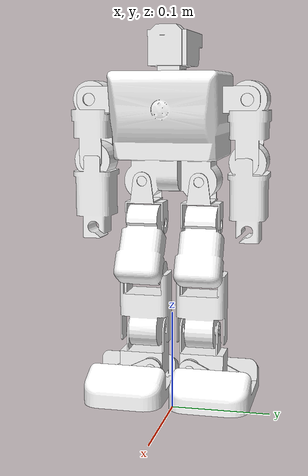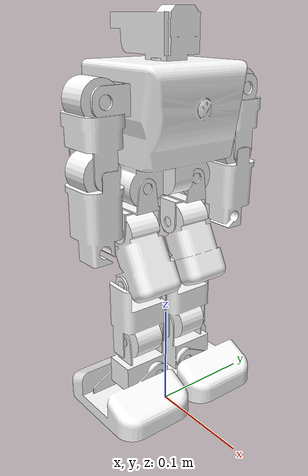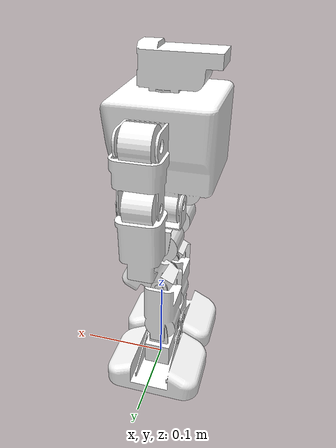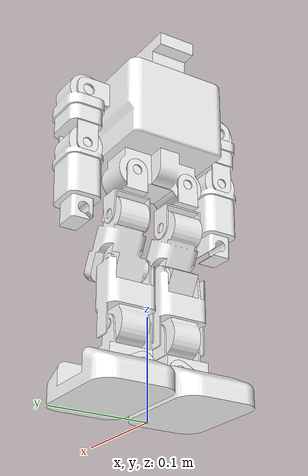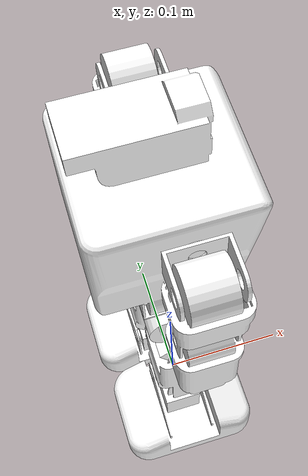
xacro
<robot name="yanshee_gazebo" xmlns:xacro="http://wiki.ros.org/xacro">
    <xacro:include filename="yanshee_base.urdf.xacro" />
    <xacro:include filename="yanshee_head.urdf.xacro" />
    <xacro:include filename="yanshee_left_arm1.urdf.xacro" />
    <xacro:include filename="yanshee_left_arm2.urdf.xacro" />
    <xacro:include filename="yanshee_left_arm3.urdf.xacro" />
    <xacro:include filename="yanshee_right_arm1.urdf.xacro" />
    <xacro:include filename="yanshee_right_arm2.urdf.xacro" />
    <xacro:include filename="yanshee_right_arm3.urdf.xacro" />
    <xacro:include filename="yanshee_left_leg1.urdf.xacro" />
    <xacro:include filename="yanshee_left_leg2.urdf.xacro" />
    <xacro:include filename="yanshee_left_leg3.urdf.xacro" />
    <xacro:include filename="yanshee_left_leg4.urdf.xacro" />
    <xacro:include filename="yanshee_left_leg5.urdf.xacro" />
    <xacro:include filename="yanshee_right_leg1.urdf.xacro" />
    <xacro:include filename="yanshee_right_leg2.urdf.xacro" />
    <xacro:include filename="yanshee_right_leg3.urdf.xacro" />
    <xacro:include filename="yanshee_right_leg4.urdf.xacro" />
    <xacro:include filename="yanshee_right_leg5.urdf.xacro" />
    <xacro:include filename="yanshee_controller.urdf.xacro" />
</robot>

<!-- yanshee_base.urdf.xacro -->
<robot name="base" xmlns:xacro="http://wiki.ros.org/xacro">

  <xacro:property name="part_name" value="base" />
  <xacro:property name="interial_x" value="-0.00671487104263047" />
  <xacro:property name="interial_y" value="-0.000225582019654342" />
  <xacro:property name="interial_z" value="-0.0079919194119481" />

  <xacro:property name="interial_mass" value="1.0296612030539" />

  <xacro:property name="interial_ixx" value="0.00180022359518362" />
  <xacro:property name="interial_ixy" value="1.1918387954471E-07" />
  <xacro:property name="interial_ixz" value="-5.28660375448492E-05" />
  <xacro:property name="interial_iyy" value="0.00176811056794777" />
  <xacro:property name="interial_iyz" value="1.82106435044606E-06" />
  <xacro:property name="interial_izz" value="0.00168298836267856" />
  <xacro:property name="mesh_file" value="package://yanshee/meshes/base_link.STL" />
  <xacro:property name="joint_offset_z" value="0.3" />

  <link name='world'>
    <visual>
      <geometry>
        <sphere radius="0.001" />
      </geometry>
    </visual>
  </link>

  <link name="${part_name}_link">
    <inertial>
      <origin xyz="${interial_x} ${interial_y} ${interial_z}" rpy="0 0 0" />
      <mass value="${interial_mass}" />
      <inertia
        ixx="${interial_ixx}"
        ixy="${interial_ixy}"
        ixz="${interial_ixz}"
        iyy="${interial_iyy}"
        iyz="${interial_iyz}"
        izz="${interial_izz}" />
    </inertial>

    <visual>
      <origin xyz="0 0 0" rpy="0 0 0" />
      <geometry>
        <mesh filename="${mesh_file}" />
      </geometry>
      <material name="">
        <color rgba="1 1 1 1" />
      </material>
    </visual>

    <collision>
      <origin xyz="0 0 0" rpy="0 0 0" />
      <geometry>
        <mesh filename="${mesh_file}" />
      </geometry>
    </collision>
  </link>

  <gazebo reference="${part_name}_link">
  </gazebo>

  <joint name="${part_name}_joint" type="fixed">
    <parent link="world"/>
    <child link="base_link"/>
    <origin rpy="0.0 0.0 0.0" xyz="0.0 0.0 ${joint_offset_z}"/>
  </joint>

</robot>

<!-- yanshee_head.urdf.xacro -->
<robot name="head" xmlns:xacro="http://wiki.ros.org/xacro">
  <xacro:property name="part_name" value="head" />
  <xacro:property name="origin_x" value="-0.0107920940962409" />
  <xacro:property name="origin_y" value="7.80887188769389E-05" />
  <xacro:property name="origin_z" value="0.00228460765430599" />
  <xacro:property name="mass_value" value="0.0931744907520849" />

  <xacro:property name="inertia_ixx" value="2.05515448473376E-05" />
  <xacro:property name="inertia_ixy" value="2.15071905057931E-08" />
  <xacro:property name="inertia_ixz" value="2.68261333173558E-06" />
  <xacro:property name="inertia_iyy" value="4.973230871684E-05" />
  <xacro:property name="inertia_iyz" value="1.39655887082477E-09" />
  <xacro:property name="inertia_izz" value="5.02600433533246E-05" />

  <xacro:property name="mesh_file" value="package://yanshee/meshes/head_Link.STL" />

  <xacro:property name="joint_offset_x" value="0" />
  <xacro:property name="joint_offset_y" value="-0.00014945" />
  <xacro:property name="joint_offset_z" value="0.06" />

  <xacro:property name="joint_axis_x" value="-0.00044678" />
  <xacro:property name="joint_axis_y" value="-0.0035302" />
  <xacro:property name="joint_axis_z" value="0.99999" />

  <xacro:property name="joint_limit_lower" value="-0.78" />
  <xacro:property name="joint_limit_upper" value="0.78" />
  <xacro:property name="joint_limit_effort" value="1.0" />
  <xacro:property name="joint_limit_velocity" value="10" />

  <xacro:property name="joint_dynamics_damping" value="5.0" />
  <xacro:property name="joint_dynamics_friction" value="0.0" />

  <link name="${part_name}_Link">
    <inertial>
      <origin xyz="${origin_x} ${origin_y} ${origin_z}" rpy="0 0 0" />
      <mass value="${mass_value}" />
      <inertia
        ixx="${inertia_ixx}"
        ixy="${inertia_ixy}"
        ixz="${inertia_ixz}"
        iyy="${inertia_iyy}"
        iyz="${inertia_iyz}"
        izz="${inertia_izz}" />
    </inertial>

    <visual>
      <origin xyz="0 0 0" rpy="0 0 0" />
      <geometry>
        <mesh filename="${mesh_file}" />
      </geometry>
      <material name="">
        <color rgba="1 1 1 1" />
      </material>
    </visual>

    <collision>
      <origin xyz="0 0 0" rpy="0 0 0" />
      <geometry>
        <mesh filename="${mesh_file}" />
      </geometry>
    </collision>
  </link>

  <gazebo reference="${part_name}_Link">
  </gazebo>

  <joint name="${part_name}_joint" type="revolute">
    <origin xyz="${joint_offset_x} ${joint_offset_y} ${joint_offset_z}" rpy="0 0 0" />
    <parent link="base_link" />
    <child link="head_Link" />
    <axis xyz="${joint_axis_x} ${joint_axis_y} ${joint_axis_z}" />
    <limit lower="${joint_limit_lower}" upper="${joint_limit_upper}" effort="${joint_limit_effort}" velocity="${joint_limit_velocity}" />
    <dynamics damping="${joint_dynamics_damping}" friction="${joint_dynamics_friction}"/>
  </joint>

  <gazebo reference="${part_name}_joint">
    <implicitSpringDamper>true</implicitSpringDamper>
  </gazebo>

</robot>

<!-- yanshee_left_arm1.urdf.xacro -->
<robot name="left_arm1" xmlns:xacro="http://wiki.ros.org/xacro">
  <xacro:property name="part_name" value="left_arm1" />
  <xacro:property name="origin_x" value="5.14775840678994E-05" />
  <xacro:property name="origin_y" value="-9.5842284426495E-05" />
  <xacro:property name="origin_z" value="-0.0118303086559914" />
  <xacro:property name="mass_value" value="0.0136649272424537" />

  <xacro:property name="inertia_ixx" value="2.3634868988607E-06" />
  <xacro:property name="inertia_ixy" value="-2.43828126653101E-12" />
  <xacro:property name="inertia_ixz" value="2.57000691024144E-10" />
  <xacro:property name="inertia_iyy" value="5.47215996034315E-06" />
  <xacro:property name="inertia_iyz" value="1.05376000100878E-09" />
  <xacro:property name="inertia_izz" value="4.66119879830543E-06" />

  <xacro:property name="mesh_file" value="package://yanshee/meshes/left_arm1_Link.STL" />

  <xacro:property name="joint_offset_x" value="0.0030003" />
  <xacro:property name="joint_offset_y" value="0.076597" />
  <xacro:property name="joint_offset_z" value="0.013315" />
  <xacro:property name="joint_offset_rr" value="-1.5708" />
  <xacro:property name="joint_offset_rp" value="0" />
  <xacro:property name="joint_offset_ry" value="0" />

  <xacro:property name="parent_link" value="base_link" />
  <xacro:property name="child_link" value="left_arm1_Link" />

  <xacro:property name="joint_axis_x" value="-5.8802E-05" />
  <xacro:property name="joint_axis_y" value="0" />
  <xacro:property name="joint_axis_z" value="-1" />

  <xacro:property name="joint_limit_lower" value="-1.58" />
  <xacro:property name="joint_limit_upper" value="1.58" />
  <xacro:property name="joint_limit_effort" value="1" />
  <xacro:property name="joint_limit_velocity" value="10" />

  <xacro:property name="joint_dynamics_damping" value="5.0" />
  <xacro:property name="joint_dynamics_friction" value="0.0" />

  <link name="${part_name}_Link">
    <inertial>
      <origin xyz="${origin_x} ${origin_y} ${origin_z}" rpy="0 0 0" />
      <mass value="${mass_value}" />
      <inertia
        ixx="${inertia_ixx}"
        ixy="${inertia_ixy}"
        ixz="${inertia_ixz}"
        iyy="${inertia_iyy}"
        iyz="${inertia_iyz}"
        izz="${inertia_izz}" />
    </inertial>

    <visual>
      <origin xyz="0 0 0" rpy="0 0 0" />
      <geometry>
        <mesh filename="${mesh_file}" />
      </geometry>
      <material name="">
        <color rgba="1 1 1 1" />
      </material>
    </visual>

    <collision>
      <origin xyz="0 0 0" rpy="0 0 0" />
      <geometry>
        <mesh filename="${mesh_file}" />
      </geometry>
    </collision>
  </link>

  <gazebo reference="${part_name}_Link">
  </gazebo>

  <joint name="${part_name}_joint" type="revolute">
    <origin xyz="${joint_offset_x} ${joint_offset_y} ${joint_offset_z}" rpy="${joint_offset_rr} ${joint_offset_rp} ${joint_offset_ry}" />
    <parent link="${parent_link}" />
    <child link="${child_link}" />
    <axis xyz="${joint_axis_x} ${joint_axis_y} ${joint_axis_z}" />
    <limit lower="${joint_limit_lower}" upper="${joint_limit_upper}" effort="${joint_limit_effort}" velocity="${joint_limit_velocity}" />
    <dynamics damping="${joint_dynamics_damping}" friction="${joint_dynamics_friction}"/>
  </joint>

  <gazebo reference="${part_name}_joint">
    <implicitSpringDamper>true</implicitSpringDamper>
  </gazebo>

</robot>

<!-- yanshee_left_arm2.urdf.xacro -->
<robot name="left_arm2" xmlns:xacro="http://wiki.ros.org/xacro">
  <xacro:property name="part_name" value="left_arm2" />
  <xacro:property name="origin_x" value="0.0186297064589019" />
  <xacro:property name="origin_y" value="0.000401816051501303" />
  <xacro:property name="origin_z" value="-0.00042578700677829" />
  <xacro:property name="mass_value" value="0.0156927248264831" />

  <xacro:property name="inertia_ixx" value="5.6753981697414E-06" />
  <xacro:property name="inertia_ixy" value="4.73427409516267E-08" />
  <xacro:property name="inertia_ixz" value="4.73427409516267E-08" />
  <xacro:property name="inertia_iyy" value="1.01425535666065E-05" />
  <xacro:property name="inertia_iyz" value="-5.19641927957789E-09" />
  <xacro:property name="inertia_izz" value="8.82186853628373E-06" />

  <xacro:property name="mesh_file" value="package://yanshee/meshes/left_arm2_Link.STL" />

  <xacro:property name="joint_offset_x" value="0" />
  <xacro:property name="joint_offset_y" value="0" />
  <xacro:property name="joint_offset_z" value="0" />
  <xacro:property name="joint_offset_rr" value="1.5708" />
  <xacro:property name="joint_offset_rp" value="0" />
  <xacro:property name="joint_offset_ry" value="1.5708" />

  <xacro:property name="parent_link" value="left_arm1_Link" />
  <xacro:property name="child_link" value="left_arm2_Link" />

  <xacro:property name="joint_axis_x" value="0" />
  <xacro:property name="joint_axis_y" value="0" />
  <xacro:property name="joint_axis_z" value="1" />

  <xacro:property name="joint_limit_lower" value="-1.58" />
  <xacro:property name="joint_limit_upper" value="1.58" />
  <xacro:property name="joint_limit_effort" value="1" />
  <xacro:property name="joint_limit_velocity" value="10" />

  <xacro:property name="joint_dynamics_damping" value="5.0" />
  <xacro:property name="joint_dynamics_friction" value="0.0" />

  <link name="${part_name}_Link">
    <inertial>
      <origin xyz="${origin_x} ${origin_y} ${origin_z}" rpy="0 0 0" />
      <mass value="${mass_value}" />
      <inertia
        ixx="${inertia_ixx}"
        ixy="${inertia_ixy}"
        ixz="${inertia_ixz}"
        iyy="${inertia_iyy}"
        iyz="${inertia_iyz}"
        izz="${inertia_izz}" />
    </inertial>

    <visual>
      <origin xyz="0 0 0" rpy="0 0 0" />
      <geometry>
        <mesh filename="${mesh_file}" />
      </geometry>
      <material name="">
        <color rgba="1 1 1 1" />
      </material>
    </visual>

    <collision>
      <origin xyz="0 0 0" rpy="0 0 0" />
      <geometry>
        <mesh filename="${mesh_file}" />
      </geometry>
    </collision>
  </link>

  <gazebo reference="${part_name}_Link">
  </gazebo>

  <joint name="${part_name}_joint" type="revolute">
    <origin xyz="${joint_offset_x} ${joint_offset_y} ${joint_offset_z}" rpy="${joint_offset_rr} ${joint_offset_rp} ${joint_offset_ry}" />
    <parent link="${parent_link}" />
    <child link="${child_link}" />
    <axis xyz="${joint_axis_x} ${joint_axis_y} ${joint_axis_z}" />
    <limit lower="${joint_limit_lower}" upper="${joint_limit_upper}" effort="${joint_limit_effort}" velocity="${joint_limit_velocity}" />
    <dynamics damping="${joint_dynamics_damping}" friction="${joint_dynamics_friction}"/>
  </joint>

  <gazebo reference="${part_name}_joint">
    <implicitSpringDamper>true</implicitSpringDamper>
  </gazebo>

</robot>

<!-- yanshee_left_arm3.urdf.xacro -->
<robot name="left_arm3" xmlns:xacro="http://wiki.ros.org/xacro">
  <xacro:property name="part_name" value="left_arm3" />
  <xacro:property name="origin_x" value="0.026570274501621" />
  <xacro:property name="origin_y" value="9.51803753585501E-05" />
  <xacro:property name="origin_z" value="-0.00376690909324129" />
  <xacro:property name="mass_value" value="0.0983861935013279" />

  <xacro:property name="inertia_ixx" value="1.95628201387486E-05" />
  <xacro:property name="inertia_ixy" value="-4.69255772866858E-07" />
  <xacro:property name="inertia_ixz" value="4.3937955466687E-07" />
  <xacro:property name="inertia_iyy" value="6.21429342121587E-05" />
  <xacro:property name="inertia_iyz" value="1.77682159194068E-08" />
  <xacro:property name="inertia_izz" value="6.01446819208126E-05" />

  <xacro:property name="mesh_file" value="package://yanshee/meshes/left_arm3_Link.STL" />

  <xacro:property name="joint_offset_x" value="0.059245" />
  <xacro:property name="joint_offset_y" value="0" />
  <xacro:property name="joint_offset_z" value="0.00152" />
  <xacro:property name="joint_offset_rr" value="0" />
  <xacro:property name="joint_offset_rp" value="0" />
  <xacro:property name="joint_offset_ry" value="0" />

  <xacro:property name="parent_link" value="left_arm2_Link" />
  <xacro:property name="child_link" value="left_arm3_Link" />

  <xacro:property name="joint_axis_x" value="0.026177" />
  <xacro:property name="joint_axis_y" value="0" />
  <xacro:property name="joint_axis_z" value="0.99966" />

  <xacro:property name="joint_limit_lower" value="-1.58" />
  <xacro:property name="joint_limit_upper" value="1.58" />
  <xacro:property name="joint_limit_effort" value="1" />
  <xacro:property name="joint_limit_velocity" value="10" />

  <xacro:property name="joint_dynamics_damping" value="5.0" />
  <xacro:property name="joint_dynamics_friction" value="0.0" />

  <link name="${part_name}_Link">
    <inertial>
      <origin xyz="${origin_x} ${origin_y} ${origin_z}" rpy="0 0 0" />
      <mass value="${mass_value}" />
      <inertia
        ixx="${inertia_ixx}"
        ixy="${inertia_ixy}"
        ixz="${inertia_ixz}"
        iyy="${inertia_iyy}"
        iyz="${inertia_iyz}"
        izz="${inertia_izz}" />
    </inertial>

    <visual>
      <origin xyz="0 0 0" rpy="0 0 0" />
      <geometry>
        <mesh filename="${mesh_file}" />
      </geometry>
      <material name="">
        <color rgba="1 1 1 1" />
      </material>
    </visual>

    <collision>
      <origin xyz="0 0 0" rpy="0 0 0" />
      <geometry>
        <mesh filename="${mesh_file}" />
      </geometry>
    </collision>
  </link>

  <gazebo reference="${part_name}_Link">
  </gazebo>

  <joint name="${part_name}_joint" type="revolute">
    <origin xyz="${joint_offset_x} ${joint_offset_y} ${joint_offset_z}" rpy="${joint_offset_rr} ${joint_offset_rp} ${joint_offset_ry}" />
    <parent link="${parent_link}" />
    <child link="${child_link}" />
    <axis xyz="${joint_axis_x} ${joint_axis_y} ${joint_axis_z}" />
    <limit lower="${joint_limit_lower}" upper="${joint_limit_upper}" effort="${joint_limit_effort}" velocity="${joint_limit_velocity}" />
    <dynamics damping="${joint_dynamics_damping}" friction="${joint_dynamics_friction}"/>
  </joint>

  <gazebo reference="${part_name}_joint">
    <implicitSpringDamper>true</implicitSpringDamper>
  </gazebo>

</robot>

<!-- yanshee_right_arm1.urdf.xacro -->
<robot name="right_arm1" xmlns:xacro="http://wiki.ros.org/xacro">
  <xacro:property name="part_name" value="right_arm1" />
  <xacro:property name="origin_x" value="-5.1477587142388E-05" />
  <xacro:property name="origin_y" value="-9.58421639294105E-05" />
  <xacro:property name="origin_z" value="-0.0118303086560013" />
  <xacro:property name="mass_value" value="0.0136649272424444" />

  <xacro:property name="inertia_ixx" value="2.36348689889869E-06" />
  <xacro:property name="inertia_ixy" value="2.43827204007905E-12" />
  <xacro:property name="inertia_ixz" value="-2.57000159418442E-10" />
  <xacro:property name="inertia_iyy" value="5.4721599603395E-06" />
  <xacro:property name="inertia_iyz" value="1.05373950042753E-09" />
  <xacro:property name="inertia_izz" value="4.66119879834388E-06" />

  <xacro:property name="mesh_file" value="package://yanshee/meshes/right_arm1_Link.STL" />

  <xacro:property name="joint_offset_x" value="0.0030003" />
  <xacro:property name="joint_offset_y" value="-0.077273" />
  <xacro:property name="joint_offset_z" value="0.013316" />
  <xacro:property name="joint_offset_rr" value="1.5708" />
  <xacro:property name="joint_offset_rp" value="0" />
  <xacro:property name="joint_offset_ry" value="0" />

  <xacro:property name="parent_link" value="base_link" />
  <xacro:property name="child_link" value="right_arm1_Link" />

  <xacro:property name="joint_axis_x" value="0" />
  <xacro:property name="joint_axis_y" value="0" />
  <xacro:property name="joint_axis_z" value="1" />

  <xacro:property name="joint_limit_lower" value="-1.58" />
  <xacro:property name="joint_limit_upper" value="1.58" />
  <xacro:property name="joint_limit_effort" value="1" />
  <xacro:property name="joint_limit_velocity" value="10" />

  <xacro:property name="joint_dynamics_damping" value="5.0" />
  <xacro:property name="joint_dynamics_friction" value="0.0" />

  <link name="${part_name}_Link">
    <inertial>
      <origin xyz="${origin_x} ${origin_y} ${origin_z}" rpy="0 0 0" />
      <mass value="${mass_value}" />
      <inertia
        ixx="${inertia_ixx}"
        ixy="${inertia_ixy}"
        ixz="${inertia_ixz}"
        iyy="${inertia_iyy}"
        iyz="${inertia_iyz}"
        izz="${inertia_izz}" />
    </inertial>

    <visual>
      <origin xyz="0 0 0" rpy="0 0 0" />
      <geometry>
        <mesh filename="${mesh_file}" />
      </geometry>
      <material name="">
        <color rgba="1 1 1 1" />
      </material>
    </visual>

    <collision>
      <origin xyz="0 0 0" rpy="0 0 0" />
      <geometry>
        <mesh filename="${mesh_file}" />
      </geometry>
    </collision>
  </link>

  <joint name="${part_name}_joint" type="revolute">
    <origin xyz="${joint_offset_x} ${joint_offset_y} ${joint_offset_z}" rpy="${joint_offset_rr} ${joint_offset_rp} ${joint_offset_ry}" />
    <parent link="${parent_link}" />
    <child link="${child_link}" />
    <axis xyz="${joint_axis_x} ${joint_axis_y} ${joint_axis_z}" />
    <limit lower="${joint_limit_lower}" upper="${joint_limit_upper}" effort="${joint_limit_effort}" velocity="${joint_limit_velocity}" />
    <dynamics damping="${joint_dynamics_damping}" friction="${joint_dynamics_friction}"/>
  </joint>

  <gazebo reference="${part_name}_joint">
    <implicitSpringDamper>true</implicitSpringDamper>
  </gazebo>

</robot>

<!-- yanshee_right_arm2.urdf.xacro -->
<robot name="right_arm2" xmlns:xacro="http://wiki.ros.org/xacro">
  <xacro:property name="part_name" value="right_arm2" />
  <xacro:property name="origin_x" value="0.0186297095059434" />
  <xacro:property name="origin_y" value="0.000401688645375403" />
  <xacro:property name="origin_z" value="0.000425917718280107" />
  <xacro:property name="mass_value" value="0.0156926956999585" />

  <xacro:property name="inertia_ixx" value="5.67540894238038E-06" />
  <xacro:property name="inertia_ixy" value="4.73622619858288E-08" />
  <xacro:property name="inertia_ixz" value="1.27913953578669E-07" />
  <xacro:property name="inertia_iyy" value="1.01425587967183E-05" />
  <xacro:property name="inertia_iyz" value="5.14556186469705E-09" />
  <xacro:property name="inertia_izz" value="8.82187996580289E-06" />

  <xacro:property name="mesh_file" value="package://yanshee/meshes/right_arm2_Link.STL" />

  <xacro:property name="joint_offset_x" value="-9.961E-05" />
  <xacro:property name="joint_offset_y" value="0" />
  <xacro:property name="joint_offset_z" value="0" />
  <xacro:property name="joint_offset_rr" value="1.5708" />
  <xacro:property name="joint_offset_rp" value="0" />
  <xacro:property name="joint_offset_ry" value="-1.5708" />

  <xacro:property name="parent_link" value="right_arm1_Link" />
  <xacro:property name="child_link" value="right_arm2_Link" />

  <xacro:property name="joint_axis_x" value="0" />
  <xacro:property name="joint_axis_y" value="0" />
  <xacro:property name="joint_axis_z" value="1" />

  <xacro:property name="joint_limit_lower" value="-1.58" />
  <xacro:property name="joint_limit_upper" value="1.58" />
  <xacro:property name="joint_limit_effort" value="1" />
  <xacro:property name="joint_limit_velocity" value="10" />

  <xacro:property name="joint_dynamics_damping" value="5.0" />
  <xacro:property name="joint_dynamics_friction" value="0.0" />

  <link name="${part_name}_Link">
    <inertial>
      <origin xyz="${origin_x} ${origin_y} ${origin_z}" rpy="0 0 0" />
      <mass value="${mass_value}" />
      <inertia
        ixx="${inertia_ixx}"
        ixy="${inertia_ixy}"
        ixz="${inertia_ixz}"
        iyy="${inertia_iyy}"
        iyz="${inertia_iyz}"
        izz="${inertia_izz}" />
    </inertial>

    <visual>
      <origin xyz="0 0 0" rpy="0 0 0" />
      <geometry>
        <mesh filename="${mesh_file}" />
      </geometry>
      <material name="">
        <color rgba="1 1 1 1" />
      </material>
    </visual>

    <collision>
      <origin xyz="0 0 0" rpy="0 0 0" />
      <geometry>
        <mesh filename="${mesh_file}" />
      </geometry>
    </collision>
  </link>

  <gazebo reference="${part_name}">
  </gazebo>

  <joint name="${part_name}_joint" type="revolute">
    <origin xyz="${joint_offset_x} ${joint_offset_y} ${joint_offset_z}" rpy="${joint_offset_rr} ${joint_offset_rp} ${joint_offset_ry}" />
    <parent link="${parent_link}" />
    <child link="${child_link}" />
    <axis xyz="${joint_axis_x} ${joint_axis_y} ${joint_axis_z}" />
    <limit lower="${joint_limit_lower}" upper="${joint_limit_upper}" effort="${joint_limit_effort}" velocity="${joint_limit_velocity}" />
    <dynamics damping="${joint_dynamics_damping}" friction="${joint_dynamics_friction}"/>
  </joint>

  <gazebo reference="${part_name}_joint">
    <implicitSpringDamper>true</implicitSpringDamper>
  </gazebo>

</robot>

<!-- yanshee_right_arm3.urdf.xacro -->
<robot name="right_arm3" xmlns:xacro="http://wiki.ros.org/xacro">
  <xacro:property name="part_name" value="right_arm3" />
  <xacro:property name="origin_x" value="0.026659702183302" />
  <xacro:property name="origin_y" value="9.51783873687356E-05" />
  <xacro:property name="origin_z" value="0.00307009292755899" />
  <xacro:property name="mass_value" value="0.0983852869739852" />

  <xacro:property name="inertia_ixx" value="1.95671253596984E-05" />
  <xacro:property name="inertia_ixy" value="-4.69557130988975E-07" />
  <xacro:property name="inertia_ixz" value="6.23165184228249E-07" />
  <xacro:property name="inertia_iyy" value="6.2142544545993E-05" />
  <xacro:property name="inertia_iyz" value="-5.47676812377141E-09" />
  <xacro:property name="inertia_izz" value="6.01395038406066E-05" />

  <xacro:property name="mesh_file" value="package://yanshee/meshes/right_arm3_Link.STL" />

  <xacro:property name="joint_offset_x" value="0.059245" />
  <xacro:property name="joint_offset_y" value="0" />
  <xacro:property name="joint_offset_z" value="-0.00152" />
  <xacro:property name="joint_offset_rr" value="0" />
  <xacro:property name="joint_offset_rp" value="0" />
  <xacro:property name="joint_offset_ry" value="0" />

  <xacro:property name="parent_link" value="right_arm2_Link" />
  <xacro:property name="child_link" value="right_arm3_Link" />

  <xacro:property name="joint_axis_x" value="0" />
  <xacro:property name="joint_axis_y" value="0" />
  <xacro:property name="joint_axis_z" value="-1" />

  <xacro:property name="joint_limit_lower" value="-1.58" />
  <xacro:property name="joint_limit_upper" value="1.58" />
  <xacro:property name="joint_limit_effort" value="1" />
  <xacro:property name="joint_limit_velocity" value="10" />

  <xacro:property name="joint_dynamics_damping" value="5.0" />
  <xacro:property name="joint_dynamics_friction" value="0.0" />

  <link name="${part_name}_Link">
    <inertial>
      <origin xyz="${origin_x} ${origin_y} ${origin_z}" rpy="0 0 0" />
      <mass value="${mass_value}" />
      <inertia
        ixx="${inertia_ixx}"
        ixy="${inertia_ixy}"
        ixz="${inertia_ixz}"
        iyy="${inertia_iyy}"
        iyz="${inertia_iyz}"
        izz="${inertia_izz}" />
    </inertial>

    <visual>
      <origin xyz="0 0 0" rpy="0 0 0" />
      <geometry>
        <mesh filename="${mesh_file}" />
      </geometry>
      <material name="">
        <color rgba="1 1 1 1" />
      </material>
    </visual>

    <collision>
      <origin xyz="0 0 0" rpy="0 0 0" />
      <geometry>
        <mesh filename="${mesh_file}" />
      </geometry>
    </collision>
  </link>

  <gazebo reference="${part_name}">
  </gazebo>

  <joint name="${part_name}_joint" type="revolute">
    <origin xyz="${joint_offset_x} ${joint_offset_y} ${joint_offset_z}" rpy="${joint_offset_rr} ${joint_offset_rp} ${joint_offset_ry}" />
    <parent link="${parent_link}" />
    <child link="${child_link}" />
    <axis xyz="${joint_axis_x} ${joint_axis_y} ${joint_axis_z}" />
    <limit lower="${joint_limit_lower}" upper="${joint_limit_upper}" effort="${joint_limit_effort}" velocity="${joint_limit_velocity}" />
    <dynamics damping="${joint_dynamics_damping}" friction="${joint_dynamics_friction}"/>
  </joint>

  <gazebo reference="${part_name}_joint">
    <implicitSpringDamper>true</implicitSpringDamper>
  </gazebo>

</robot>

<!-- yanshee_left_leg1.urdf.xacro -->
<robot name="left_leg1" xmlns:xacro="http://wiki.ros.org/xacro">
  <xacro:property name="part_name" value="left_leg1" />
  <xacro:property name="origin_x" value="0.0218793806245584" />
  <xacro:property name="origin_y" value="0.000461528315038338" />
  <xacro:property name="origin_z" value="0.000437328945235152" />
  <xacro:property name="mass_value" value="0.0156559636608665" />

  <xacro:property name="inertia_ixx" value="4.47155922341706E-06" />
  <xacro:property name="inertia_ixy" value="-1.77585864343584E-07" />
  <xacro:property name="inertia_ixz" value="1.75175041214978E-07" />
  <xacro:property name="inertia_iyy" value="4.61839887541924E-06" />
  <xacro:property name="inertia_iyz" value="3.15996181844891E-09" />
  <xacro:property name="inertia_izz" value="4.6159043452499E-06" />

  <xacro:property name="mesh_file" value="package://yanshee/meshes/left_leg1_Link.STL" />

  <xacro:property name="joint_offset_x" value="-0.0091403" />
  <xacro:property name="joint_offset_y" value="0.028469" />
  <xacro:property name="joint_offset_z" value="-0.066034" />
  <xacro:property name="joint_offset_rr" value="-1.5708" />
  <xacro:property name="joint_offset_rp" value="1.5708" />
  <xacro:property name="joint_offset_ry" value="1.5708" />

  <xacro:property name="parent_link" value="base_link" />
  <xacro:property name="child_link" value="left_leg1_Link" />

  <xacro:property name="joint_axis_x" value="0" />
  <xacro:property name="joint_axis_y" value="0" />
  <xacro:property name="joint_axis_z" value="-1" />

  <xacro:property name="joint_limit_lower" value="-1.58" />
  <xacro:property name="joint_limit_upper" value="1.58" />
  <xacro:property name="joint_limit_effort" value="1" />
  <xacro:property name="joint_limit_velocity" value="10" />

  <link name="${part_name}_Link">
    <inertial>
      <origin xyz="${origin_x} ${origin_y} ${origin_z}" rpy="0 0 0" />
      <mass value="${mass_value}" />
      <inertia
        ixx="${inertia_ixx}"
        ixy="${inertia_ixy}"
        ixz="${inertia_ixz}"
        iyy="${inertia_iyy}"
        iyz="${inertia_iyz}"
        izz="${inertia_izz}" />
    </inertial>

    <visual>
      <origin xyz="0 0 0" rpy="0 0 0" />
      <geometry>
        <mesh filename="${mesh_file}" />
      </geometry>
      <material name="">
        <color rgba="1 1 1 1" />
      </material>
    </visual>

    <collision>
      <origin xyz="0 0 0" rpy="0 0 0" />
      <geometry>
        <mesh filename="${mesh_file}" />
      </geometry>
    </collision>
  </link>

  <gazebo reference="${part_name}_Link">
  </gazebo>

  <joint name="${part_name}_joint" type="revolute">
    <origin xyz="${joint_offset_x} ${joint_offset_y} ${joint_offset_z}" rpy="${joint_offset_rr} ${joint_offset_rp} ${joint_offset_ry}" />
    <parent link="${parent_link}" />
    <child link="${child_link}" />
    <axis xyz="${joint_axis_x} ${joint_axis_y} ${joint_axis_z}" />
    <limit lower="${joint_limit_lower}" upper="${joint_limit_upper}" effort="${joint_limit_effort}" velocity="${joint_limit_velocity}" />
  </joint>

  <gazebo reference="${part_name}_joint">
    <implicitSpringDamper>true</implicitSpringDamper>
  </gazebo>

</robot>

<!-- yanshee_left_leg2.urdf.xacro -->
<robot name="left_leg2" xmlns:xacro="http://wiki.ros.org/xacro">
  <xacro:property name="part_name" value="left_leg2" />
  <xacro:property name="origin_x" value="0.0255864571187106" />
  <xacro:property name="origin_y" value="-0.0108509305854525" />
  <xacro:property name="origin_z" value="0.00101864247275891" />
  <xacro:property name="mass_value" value="0.107715150230029" />

  <xacro:property name="inertia_ixx" value="3.38164419926127E-05" />
  <xacro:property name="inertia_ixy" value="1.23153518587689E-05" />
  <xacro:property name="inertia_ixz" value="4.6194211271192E-07" />
  <xacro:property name="inertia_iyy" value="5.78640129364067E-05" />
  <xacro:property name="inertia_iyz" value="2.74795544044712E-07" />
  <xacro:property name="inertia_izz" value="6.64839927510415E-05" />

  <xacro:property name="mesh_file" value="package://yanshee/meshes/left_leg2_Link.STL" />

  <xacro:property name="joint_offset_x" value="0.0438" />
  <xacro:property name="joint_offset_y" value="0" />
  <xacro:property name="joint_offset_z" value="0" />
  <xacro:property name="joint_offset_rr" value="1.5708" />
  <xacro:property name="joint_offset_rp" value="0" />
  <xacro:property name="joint_offset_ry" value="0" />

  <xacro:property name="parent_link" value="left_leg1_Link" />
  <xacro:property name="child_link" value="left_leg2_Link" />

  <xacro:property name="joint_axis_x" value="0" />
  <xacro:property name="joint_axis_y" value="0" />
  <xacro:property name="joint_axis_z" value="-1" />

  <xacro:property name="joint_limit_lower" value="-1.58" />
  <xacro:property name="joint_limit_upper" value="1.58" />
  <xacro:property name="joint_limit_effort" value="1" />
  <xacro:property name="joint_limit_velocity" value="10" />

  <link name="${part_name}_Link">
    <inertial>
      <origin xyz="${origin_x} ${origin_y} ${origin_z}" rpy="0 0 0" />
      <mass value="${mass_value}" />
      <inertia
        ixx="${inertia_ixx}"
        ixy="${inertia_ixy}"
        ixz="${inertia_ixz}"
        iyy="${inertia_iyy}"
        iyz="${inertia_iyz}"
        izz="${inertia_izz}" />
    </inertial>

    <visual>
      <origin xyz="0 0 0" rpy="0 0 0" />
      <geometry>
        <mesh filename="${mesh_file}" />
      </geometry>
      <material name="">
        <color rgba="1 1 1 1" />
      </material>
    </visual>

    <collision>
      <origin xyz="0 0 0" rpy="0 0 0" />
      <geometry>
        <mesh filename="${mesh_file}" />
      </geometry>
    </collision>
  </link>

  <gazebo reference="${part_name}">
  </gazebo>

  <joint name="${part_name}_joint" type="revolute">
    <origin xyz="${joint_offset_x} ${joint_offset_y} ${joint_offset_z}" rpy="${joint_offset_rr} ${joint_offset_rp} ${joint_offset_ry}" />
    <parent link="${parent_link}" />
    <child link="${child_link}" />
    <axis xyz="${joint_axis_x} ${joint_axis_y} ${joint_axis_z}" />
    <limit lower="${joint_limit_lower}" upper="${joint_limit_upper}" effort="${joint_limit_effort}" velocity="${joint_limit_velocity}" />
  </joint>

  <gazebo reference="${part_name}_joint">
    <implicitSpringDamper>true</implicitSpringDamper>
  </gazebo>

</robot>

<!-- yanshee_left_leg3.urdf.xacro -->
<robot name="left_leg3" xmlns:xacro="http://wiki.ros.org/xacro">
  <xacro:property name="part_name" value="left_leg3" />
  <xacro:property name="origin_x" value="0.0407946525783551" />
  <xacro:property name="origin_y" value="2.00999895415663E-05" />
  <xacro:property name="origin_z" value="0.000215900493275946" />
  <xacro:property name="mass_value" value="0.0769705912620037" />

  <xacro:property name="inertia_ixx" value="2.01778905647826E-05" />
  <xacro:property name="inertia_ixy" value="3.24770412009536E-09" />
  <xacro:property name="inertia_ixz" value="-5.11455121015069E-08" />
  <xacro:property name="inertia_iyy" value="3.91841731233319E-05" />
  <xacro:property name="inertia_iyz" value="1.50114743011987E-09" />
  <xacro:property name="inertia_izz" value="3.21700138167598E-05" />

  <xacro:property name="mesh_file" value="package://yanshee/meshes/left_leg3_Link.STL" />

  <xacro:property name="joint_offset_x" value="0.049876" />
  <xacro:property name="joint_offset_y" value="0" />
  <xacro:property name="joint_offset_z" value="1.4223E-05" />
  <xacro:property name="joint_offset_rr" value="0" />
  <xacro:property name="joint_offset_rp" value="0" />
  <xacro:property name="joint_offset_ry" value="0" />

  <xacro:property name="parent_link" value="left_leg2_Link" />
  <xacro:property name="child_link" value="left_leg3_Link" />

  <xacro:property name="joint_axis_x" value="0" />
  <xacro:property name="joint_axis_y" value="0.0007632" />
  <xacro:property name="joint_axis_z" value="-1" />

  <xacro:property name="joint_limit_lower" value="-1.58" />
  <xacro:property name="joint_limit_upper" value="1.58" />
  <xacro:property name="joint_limit_effort" value="1" />
  <xacro:property name="joint_limit_velocity" value="10" />

  <link name="${part_name}_Link">
    <inertial>
      <origin xyz="${origin_x} ${origin_y} ${origin_z}" rpy="0 0 0" />
      <mass value="${mass_value}" />
      <inertia
        ixx="${inertia_ixx}"
        ixy="${inertia_ixy}"
        ixz="${inertia_ixz}"
        iyy="${inertia_iyy}"
        iyz="${inertia_iyz}"
        izz="${inertia_izz}" />
    </inertial>

    <visual>
      <origin xyz="0 0 0" rpy="0 0 0" />
      <geometry>
        <mesh filename="${mesh_file}" />
      </geometry>
      <material name="">
        <color rgba="1 1 1 1" />
      </material>
    </visual>

    <collision>
      <origin xyz="0 0 0" rpy="0 0 0" />
      <geometry>
        <mesh filename="${mesh_file}" />
      </geometry>
    </collision>
  </link>

  <gazebo reference="${part_name}_Link">
  </gazebo>

  <joint name="${part_name}_joint" type="revolute">
    <origin xyz="${joint_offset_x} ${joint_offset_y} ${joint_offset_z}" rpy="${joint_offset_rr} ${joint_offset_rp} ${joint_offset_ry}" />
    <parent link="${parent_link}" />
    <child link="${child_link}" />
    <axis xyz="${joint_axis_x} ${joint_axis_y} ${joint_axis_z}" />
    <limit lower="${joint_limit_lower}" upper="${joint_limit_upper}" effort="${joint_limit_effort}" velocity="${joint_limit_velocity}" />
  </joint>

  <gazebo reference="${part_name}_joint">
    <implicitSpringDamper>true</implicitSpringDamper>
  </gazebo>

</robot>

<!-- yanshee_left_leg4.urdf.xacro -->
<robot name="left_leg4" xmlns:xacro="http://wiki.ros.org/xacro">
  <xacro:property name="part_name" value="left_leg4" />
  <xacro:property name="origin_x" value="0.0339764234951882" />
  <xacro:property name="origin_y" value="0.00157592235510815" />
  <xacro:property name="origin_z" value="0.000681683144300838" />
  <xacro:property name="mass_value" value="0.0377470338040459" />

  <xacro:property name="inertia_ixx" value="9.3959305666122E-06" />
  <xacro:property name="inertia_ixy" value="-1.9874023770476E-07" />
  <xacro:property name="inertia_ixz" value="-6.9333960599869E-08" />
  <xacro:property name="inertia_iyy" value="6.29756290524162E-06" />
  <xacro:property name="inertia_iyz" value="2.15786874188445E-07" />
  <xacro:property name="inertia_izz" value="9.74973254351289E-06" />

  <xacro:property name="mesh_file" value="package://yanshee/meshes/left_leg4_Link.STL" />

  <xacro:property name="joint_offset_x" value="0.059245" />
  <xacro:property name="joint_offset_y" value="1.5251E-05" />
  <xacro:property name="joint_offset_z" value="0" />
  <xacro:property name="joint_offset_rr" value="1.5708" />
  <xacro:property name="joint_offset_rp" value="0" />
  <xacro:property name="joint_offset_ry" value="0" />

  <xacro:property name="parent_link" value="left_leg3_Link" />
  <xacro:property name="child_link" value="left_leg4_Link" />

  <xacro:property name="joint_axis_x" value="0" />
  <xacro:property name="joint_axis_y" value="-1" />
  <xacro:property name="joint_axis_z" value="0" />

  <xacro:property name="joint_limit_lower" value="-1.58" />
  <xacro:property name="joint_limit_upper" value="1.58" />
  <xacro:property name="joint_limit_effort" value="1" />
  <xacro:property name="joint_limit_velocity" value="10" />

  <link name="${part_name}_Link">
    <inertial>
      <origin xyz="${origin_x} ${origin_y} ${origin_z}" rpy="0 0 0" />
      <mass value="${mass_value}" />
      <inertia
        ixx="${inertia_ixx}"
        ixy="${inertia_ixy}"
        ixz="${inertia_ixz}"
        iyy="${inertia_iyy}"
        iyz="${inertia_iyz}"
        izz="${inertia_izz}" />
    </inertial>

    <visual>
      <origin xyz="0 0 0" rpy="0 0 0" />
      <geometry>
        <mesh filename="${mesh_file}" />
      </geometry>
      <material name="">
        <color rgba="1 1 1 1" />
      </material>
    </visual>

    <collision>
      <origin xyz="0 0 0" rpy="0 0 0" />
      <geometry>
        <mesh filename="${mesh_file}" />
      </geometry>
    </collision>
  </link>

  <gazebo reference="${part_name}_Link">
  </gazebo>

  <joint name="${part_name}_joint" type="revolute">
    <origin xyz="${joint_offset_x} ${joint_offset_y} ${joint_offset_z}" rpy="${joint_offset_rr} ${joint_offset_rp} ${joint_offset_ry}" />
    <parent link="${parent_link}" />
    <child link="${child_link}" />
    <axis xyz="${joint_axis_x} ${joint_axis_y} ${joint_axis_z}" />
    <limit lower="${joint_limit_lower}" upper="${joint_limit_upper}" effort="${joint_limit_effort}" velocity="${joint_limit_velocity}" />
  </joint>

  <gazebo reference="${part_name}_joint">
    <implicitSpringDamper>true</implicitSpringDamper>
  </gazebo>

</robot>

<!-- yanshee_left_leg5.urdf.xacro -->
<robot name="left_leg5" xmlns:xacro="http://wiki.ros.org/xacro">
  <xacro:property name="part_name" value="left_leg5" />
  <xacro:property name="origin_x" value="0.0196730138540844" />
  <xacro:property name="origin_y" value="-0.0233092637107096" />
  <xacro:property name="origin_z" value="-0.00142039915584111" />
  <xacro:property name="mass_value" value="0.180693448780151" />

  <xacro:property name="inertia_ixx" value="0.000286904706763416" />
  <xacro:property name="inertia_ixy" value="4.85308988509185E-07" />
  <xacro:property name="inertia_ixz" value="3.08612201699753E-08" />
  <xacro:property name="inertia_iyy" value="0.000209961688550046" />
  <xacro:property name="inertia_iyz" value="2.86937724081844E-10" />
  <xacro:property name="inertia_izz" value="0.000102539066831567" />

  <xacro:property name="mesh_file" value="package://yanshee/meshes/left_leg5_Link.STL" />

  <xacro:property name="joint_offset_x" value="0.03699" />
  <xacro:property name="joint_offset_y" value="-0.0088627" />
  <xacro:property name="joint_offset_z" value="0" />
  <xacro:property name="joint_offset_rr" value="3.1416" />
  <xacro:property name="joint_offset_rp" value="0" />
  <xacro:property name="joint_offset_ry" value="0" />

  <xacro:property name="parent_link" value="left_leg4_Link" />
  <xacro:property name="child_link" value="left_leg5_Link" />

  <xacro:property name="joint_axis_x" value="0" />
  <xacro:property name="joint_axis_y" value="0" />
  <xacro:property name="joint_axis_z" value="-1" />

  <xacro:property name="joint_limit_lower" value="-1.58" />
  <xacro:property name="joint_limit_upper" value="1.58" />
  <xacro:property name="joint_limit_effort" value="1" />
  <xacro:property name="joint_limit_velocity" value="10" />

  <link name="${part_name}_Link">
    <inertial>
      <origin xyz="${origin_x} ${origin_y} ${origin_z}" rpy="0 0 0" />
      <mass value="${mass_value}" />
      <inertia
        ixx="${inertia_ixx}"
        ixy="${inertia_ixy}"
        ixz="${inertia_ixz}"
        iyy="${inertia_iyy}"
        iyz="${inertia_iyz}"
        izz="${inertia_izz}" />
    </inertial>

    <visual>
      <origin xyz="0 0 0" rpy="0 0 0" />
      <geometry>
        <mesh filename="${mesh_file}" />
      </geometry>
      <material name="">
        <color rgba="1 1 1 1" />
      </material>
    </visual>

    <collision>
      <origin xyz="0 0 0" rpy="0 0 0" />
      <geometry>
        <mesh filename="${mesh_file}" />
      </geometry>
    </collision>
  </link>

  <gazebo reference="${part_name}_Link">
  </gazebo>

  <joint name="${part_name}_joint" type="revolute">
    <origin xyz="${joint_offset_x} ${joint_offset_y} ${joint_offset_z}" rpy="${joint_offset_rr} ${joint_offset_rp} ${joint_offset_ry}" />
    <parent link="${parent_link}" />
    <child link="${child_link}" />
    <axis xyz="${joint_axis_x} ${joint_axis_y} ${joint_axis_z}" />
    <limit lower="${joint_limit_lower}" upper="${joint_limit_upper}" effort="${joint_limit_effort}" velocity="${joint_limit_velocity}" />
  </joint>

  <gazebo reference="${part_name}_joint">
    <implicitSpringDamper>true</implicitSpringDamper>
  </gazebo>

</robot>

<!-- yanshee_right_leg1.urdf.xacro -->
<robot name="right_leg1" xmlns:xacro="http://wiki.ros.org/xacro">
  <xacro:property name="part_name" value="right_leg1" />
  <xacro:property name="origin_x" value="0.0218793806256354" />
  <xacro:property name="origin_y" value="0.000461528344157129" />
  <xacro:property name="origin_z" value="-0.00043732892343204" />
  <xacro:property name="mass_value" value="0.0156559636636307" />

  <xacro:property name="inertia_ixx" value="4.47155922610687E-06" />
  <xacro:property name="inertia_ixy" value="-1.77585863984461E-07" />
  <xacro:property name="inertia_ixz" value="-1.75175041214978E-07" />
  <xacro:property name="inertia_iyy" value="4.61839887541924E-06" />
  <xacro:property name="inertia_iyz" value="-3.15996181844891E-09" />
  <xacro:property name="inertia_izz" value="4.6159043452499E-06" />

  <xacro:property name="mesh_file" value="package://yanshee/meshes/right_leg1_Link.STL" />

  <xacro:property name="joint_offset_x" value="-0.0091403" />
  <xacro:property name="joint_offset_y" value="-0.028469" />
  <xacro:property name="joint_offset_z" value="-0.066034" />
  <xacro:property name="joint_offset_rr" value="-1.5708" />
  <xacro:property name="joint_offset_rp" value="1.5708" />
  <xacro:property name="joint_offset_ry" value="-1.5708" />

  <xacro:property name="parent_link" value="base_link" />
  <xacro:property name="child_link" value="right_leg1_Link" />

  <xacro:property name="joint_axis_x" value="0" />
  <xacro:property name="joint_axis_y" value="0" />
  <xacro:property name="joint_axis_z" value="1" />

  <xacro:property name="joint_limit_lower" value="-1.58" />
  <xacro:property name="joint_limit_upper" value="1.58" />
  <xacro:property name="joint_limit_effort" value="1" />
  <xacro:property name="joint_limit_velocity" value="10" />

  <link name="${part_name}_Link">
    <inertial>
      <origin xyz="${origin_x} ${origin_y} ${origin_z}" rpy="0 0 0" />
      <mass value="${mass_value}" />
      <inertia
        ixx="${inertia_ixx}"
        ixy="${inertia_ixy}"
        ixz="${inertia_ixz}"
        iyy="${inertia_iyy}"
        iyz="${inertia_iyz}"
        izz="${inertia_izz}" />
    </inertial>

    <visual>
      <origin xyz="0 0 0" rpy="0 0 0" />
      <geometry>
        <mesh filename="${mesh_file}" />
      </geometry>
      <material name="">
        <color rgba="1 1 1 1" />
      </material>
    </visual>

    <collision>
      <origin xyz="0 0 0" rpy="0 0 0" />
      <geometry>
        <mesh filename="${mesh_file}" />
      </geometry>
    </collision>
  </link>

  <gazebo reference="${part_name}">
  </gazebo>

  <joint name="${part_name}_joint" type="revolute">
    <origin xyz="${joint_offset_x} ${joint_offset_y} ${joint_offset_z}" rpy="${joint_offset_rr} ${joint_offset_rp} ${joint_offset_ry}" />
    <parent link="${parent_link}" />
    <child link="${child_link}" />
    <axis xyz="${joint_axis_x} ${joint_axis_y} ${joint_axis_z}" />
    <limit lower="${joint_limit_lower}" upper="${joint_limit_upper}" effort="${joint_limit_effort}" velocity="${joint_limit_velocity}" />
  </joint>

  <gazebo reference="${part_name}_joint">
    <implicitSpringDamper>true</implicitSpringDamper>
  </gazebo>

</robot>

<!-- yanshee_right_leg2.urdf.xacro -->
<robot name="right_leg2" xmlns:xacro="http://wiki.ros.org/xacro">
  <xacro:property name="part_name" value="right_leg2" />
  <xacro:property name="origin_x" value="0.0248207221657579" />
  <xacro:property name="origin_y" value="0.0125036435026244" />
  <xacro:property name="origin_z" value="0.00101864810052388" />
  <xacro:property name="mass_value" value="0.107715237159741" />

  <xacro:property name="inertia_ixx" value="3.55296285133566E-05" />
  <xacro:property name="inertia_ixy" value="-1.37815242878706E-05" />
  <xacro:property name="inertia_ixz" value="4.78946454291171E-07" />
  <xacro:property name="inertia_iyy" value="5.61509322467855E-05" />
  <xacro:property name="inertia_iyz" value="-2.43945783167363E-07" />
  <xacro:property name="inertia_izz" value="6.64840036459698E-05" />

  <xacro:property name="mesh_file" value="package://yanshee/meshes/right_leg2_Link.STL" />

  <xacro:property name="joint_offset_x" value="0.0438" />
  <xacro:property name="joint_offset_y" value="0" />
  <xacro:property name="joint_offset_z" value="0" />
  <xacro:property name="joint_offset_rr" value="1.5708" />
  <xacro:property name="joint_offset_rp" value="0" />
  <xacro:property name="joint_offset_ry" value="0" />

  <xacro:property name="parent_link" value="right_leg1_Link" />
  <xacro:property name="child_link" value="right_leg2_Link" />

  <xacro:property name="joint_axis_x" value="0" />
  <xacro:property name="joint_axis_y" value="0" />
  <xacro:property name="joint_axis_z" value="-1" />

  <xacro:property name="joint_limit_lower" value="-1.58" />
  <xacro:property name="joint_limit_upper" value="1.58" />
  <xacro:property name="joint_limit_effort" value="1" />
  <xacro:property name="joint_limit_velocity" value="10" />

  <link name="${part_name}_Link">
    <inertial>
      <origin xyz="${origin_x} ${origin_y} ${origin_z}" rpy="0 0 0" />
      <mass value="${mass_value}" />
      <inertia
        ixx="${inertia_ixx}"
        ixy="${inertia_ixy}"
        ixz="${inertia_ixz}"
        iyy="${inertia_iyy}"
        iyz="${inertia_iyz}"
        izz="${inertia_izz}" />
    </inertial>

    <visual>
      <origin xyz="0 0 0" rpy="0 0 0" />
      <geometry>
        <mesh filename="${mesh_file}" />
      </geometry>
      <material name="">
        <color rgba="1 1 1 1" />
      </material>
    </visual>

    <collision>
      <origin xyz="0 0 0" rpy="0 0 0" />
      <geometry>
        <mesh filename="${mesh_file}" />
      </geometry>
    </collision>
  </link>

  <gazebo reference="${part_name}">
  </gazebo>

  <joint name="${part_name}_joint" type="revolute">
    <origin xyz="${joint_offset_x} ${joint_offset_y} ${joint_offset_z}" rpy="${joint_offset_rr} ${joint_offset_rp} ${joint_offset_ry}" />
    <parent link="${parent_link}" />
    <child link="${child_link}" />
    <axis xyz="${joint_axis_x} ${joint_axis_y} ${joint_axis_z}" />
    <limit lower="${joint_limit_lower}" upper="${joint_limit_upper}" effort="${joint_limit_effort}" velocity="${joint_limit_velocity}" />
  </joint>

  <gazebo reference="${part_name}_joint">
    <implicitSpringDamper>true</implicitSpringDamper>
  </gazebo>

</robot>

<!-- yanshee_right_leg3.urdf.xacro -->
<robot name="right_leg3" xmlns:xacro="http://wiki.ros.org/xacro">
  <xacro:property name="part_name" value="right_leg3" />
  <xacro:property name="origin_x" value="0.0407948464152487" />
  <xacro:property name="origin_y" value="-2.01710272295947E-05" />
  <xacro:property name="origin_z" value="0.000215807538541168" />
  <xacro:property name="mass_value" value="0.0769703186436065" />

  <xacro:property name="inertia_ixx" value="2.01778686734398E-05" />
  <xacro:property name="inertia_ixy" value="-3.2266132479563E-09" />
  <xacro:property name="inertia_ixz" value="-5.14487015473355E-08" />
  <xacro:property name="inertia_iyy" value="3.91833919170359E-05" />
  <xacro:property name="inertia_iyz" value="3.83742815950406E-09" />
  <xacro:property name="inertia_izz" value="3.21693080984243E-05" />

  <xacro:property name="mesh_file" value="package://yanshee/meshes/right_leg3_Link.STL" />

  <xacro:property name="joint_offset_x" value="0.049769" />
  <xacro:property name="joint_offset_y" value="0.0032671" />
  <xacro:property name="joint_offset_z" value="1.4223E-05" />
  <xacro:property name="joint_offset_rr" value="0" />
  <xacro:property name="joint_offset_rp" value="0" />
  <xacro:property name="joint_offset_ry" value="0" />

  <xacro:property name="parent_link" value="right_leg2_Link" />
  <xacro:property name="child_link" value="right_leg3_Link" />

  <xacro:property name="joint_axis_x" value="0" />
  <xacro:property name="joint_axis_y" value="0.0007632" />
  <xacro:property name="joint_axis_z" value="-1" />

  <xacro:property name="joint_limit_lower" value="-1.58" />
  <xacro:property name="joint_limit_upper" value="1.58" />
  <xacro:property name="joint_limit_effort" value="1" />
  <xacro:property name="joint_limit_velocity" value="10" />

  <link name="${part_name}_Link">
    <inertial>
      <origin xyz="${origin_x} ${origin_y} ${origin_z}" rpy="0 0 0" />
      <mass value="${mass_value}" />
      <inertia
        ixx="${inertia_ixx}"
        ixy="${inertia_ixy}"
        ixz="${inertia_ixz}"
        iyy="${inertia_iyy}"
        iyz="${inertia_iyz}"
        izz="${inertia_izz}" />
    </inertial>

    <visual>
      <origin xyz="0 0 0" rpy="0 0 0" />
      <geometry>
        <mesh filename="${mesh_file}" />
      </geometry>
      <material name="">
        <color rgba="1 1 1 1" />
      </material>
    </visual>

    <collision>
      <origin xyz="0 0 0" rpy="0 0 0" />
      <geometry>
        <mesh filename="${mesh_file}" />
      </geometry>
    </collision>
  </link>

  <gazebo reference="${part_name}">
  </gazebo>

  <joint name="${part_name}_joint" type="revolute">
    <origin xyz="${joint_offset_x} ${joint_offset_y} ${joint_offset_z}" rpy="${joint_offset_rr} ${joint_offset_rp} ${joint_offset_ry}" />
    <parent link="${parent_link}" />
    <child link="${child_link}" />
    <axis xyz="${joint_axis_x} ${joint_axis_y} ${joint_axis_z}" />
    <limit lower="${joint_limit_lower}" upper="${joint_limit_upper}" effort="${joint_limit_effort}" velocity="${joint_limit_velocity}" />
  </joint>

  <gazebo reference="${part_name}_joint">
    <implicitSpringDamper>true</implicitSpringDamper>
  </gazebo>

</robot>
